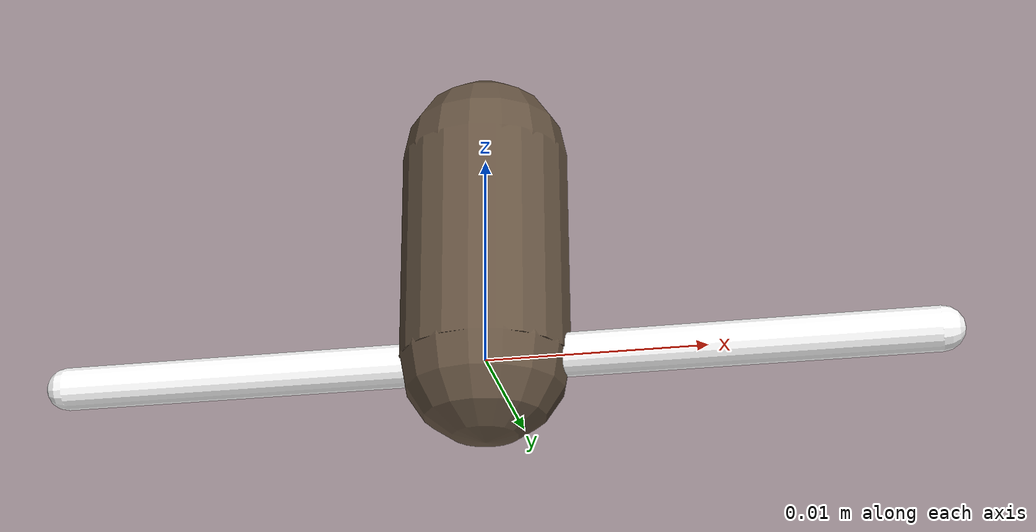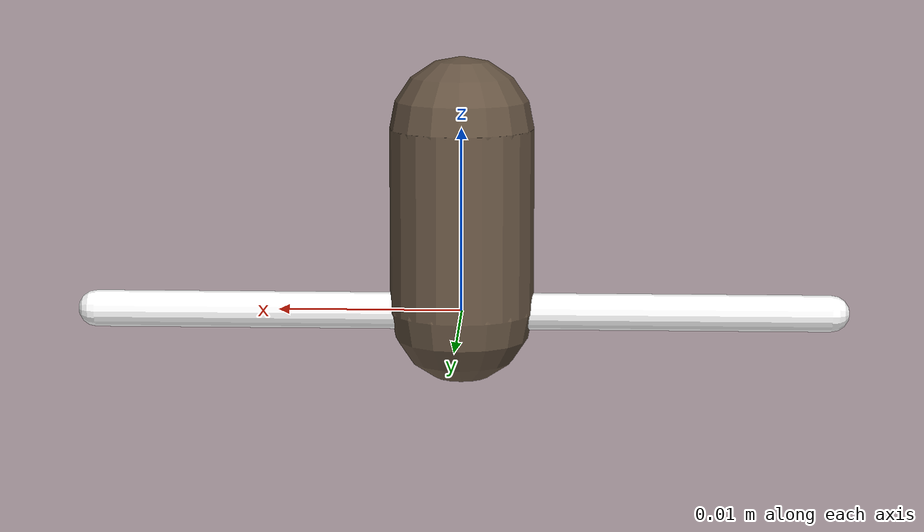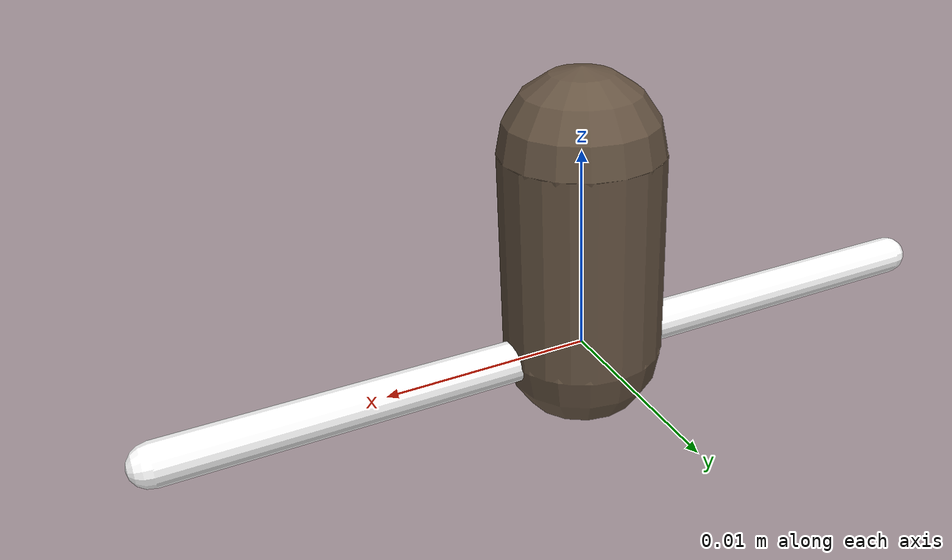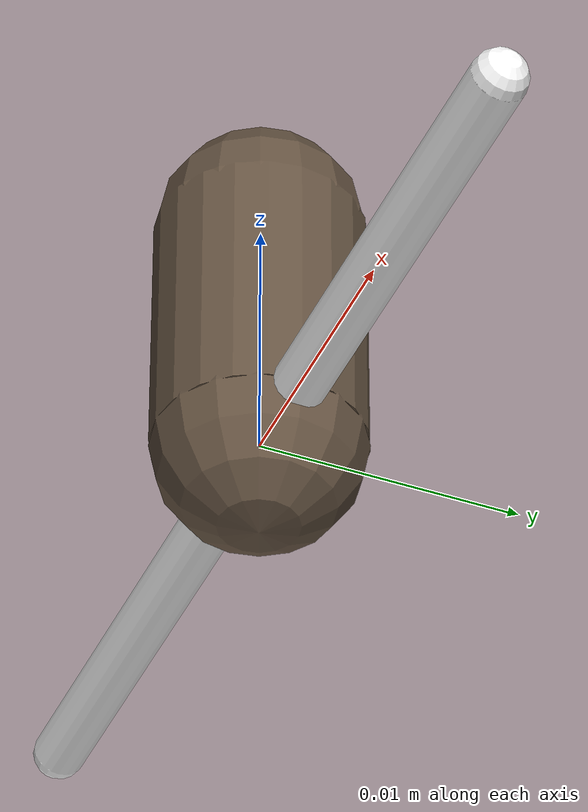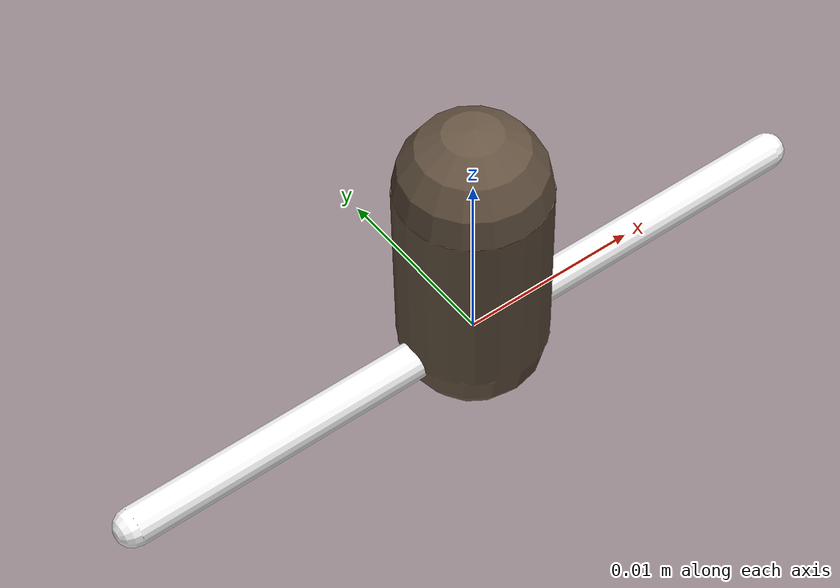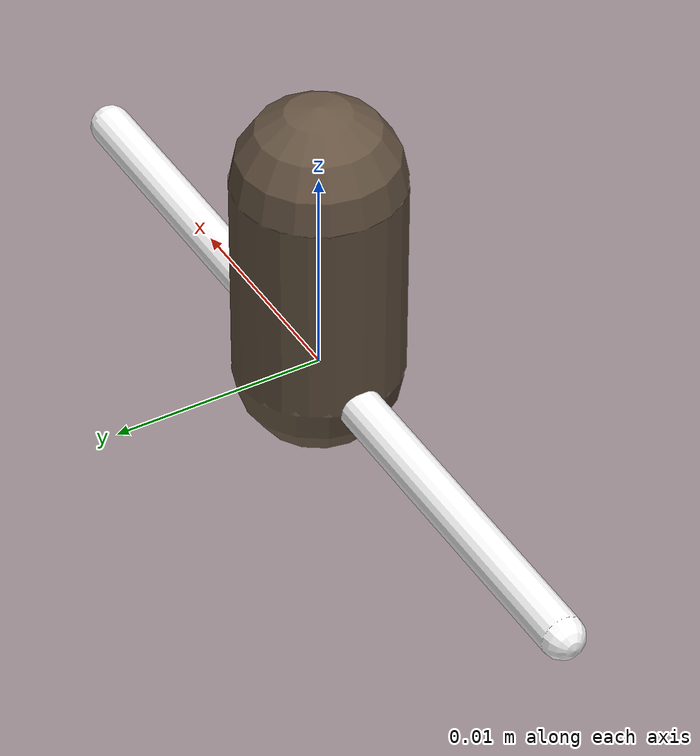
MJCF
<mujoco model="tendon_pole">
  <compiler inertiafromgeom="true"/>
  <default>
    <joint armature="0" damping="0" limited="true"/>
    <geom contype="0" rgba="0.4 0.33 0.26 1.0"/>
    <tendon/>
    <motor ctrlrange="-3 3"/>
  </default>
  <option gravity="0 0 -0.981" timestep="0.00125" />

 <!-- AANGEPAST NAAR REAL VALUES MOUSE (erg klein)  -->
  <worldbody>
    <light diffuse=".5 .5 .5" pos="0 0 3" dir="0 0 -1"/>
    <geom name="rail" pos="0 0 0" quat="0.707 0 0.707 0" size="0.001 0.02" type="capsule" rgba="1 1 1 1"/>
    <body name="pole" pos="0 0 0">
      <joint axis="0 1 0" name="hinge" pos="0 0 0" range="-89 89" type="hinge" limited="true" damping="0.00005" armature="0.000005" />

      <geom fromto="0 0 0 0.0 0 0.01" name="cpole" size="0.0039 0.003" type="capsule" mass="0.01"/>
    </body>
  </worldbody>

<!-- damping="0.000001" armature="0.00000005" -->
  <actuator>
    <motor ctrllimited="true" ctrlrange="-1 1" gear="1" joint="hinge" name="hinge"/>
  </actuator>
</mujoco>
